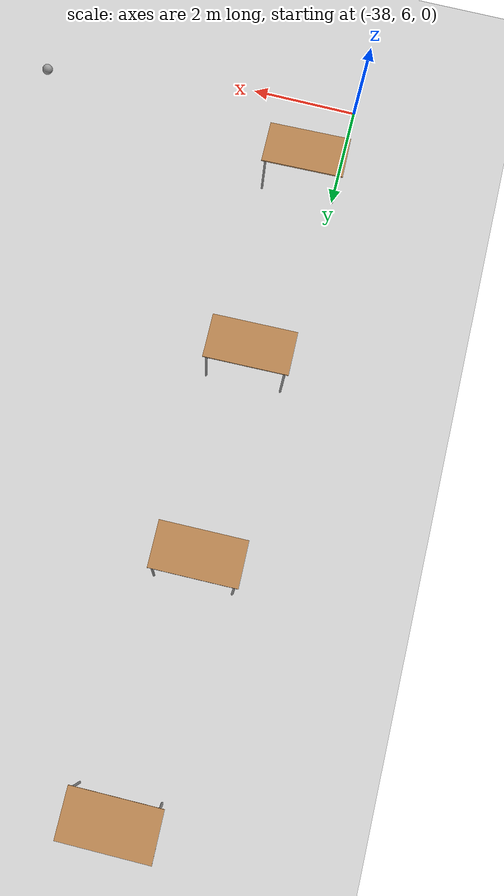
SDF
<sdf version="1.6">
 <world name="default">
  <model name="ground_plane">
   <static>1</static>
   <link name="link">
    <collision name="collision">
     <geometry><plane><normal>0 0 1</normal><size>100 100</size></plane></geometry>
     <surface><friction><ode><mu>100</mu><mu2>50</mu2></ode></friction></surface>
    </collision>
    <visual name="visual">
     <cast_shadows>0</cast_shadows>
     <geometry><plane><normal>0 0 1</normal><size>100 100</size></plane></geometry>
     <material>
      <script><uri>file://media/materials/scripts/gazebo.material</uri><name>Gazebo/Grey</name></script>
     </material>
    </visual>
   </link>
  </model>
  <model name="table_clone_5">
   <static>1</static>
   <link name="link">
    <collision name="surface">
     <pose>0 0 1 0 -0 0</pose>
     <geometry><box><size>1.5 0.8 0.03</size></box></geometry>
     <surface><friction><ode><mu>0.6</mu><mu2>0.6</mu2></ode></friction></surface>
    </collision>
    <visual name="visual1">
     <pose>0 0 1 0 -0 0</pose>
     <geometry><box><size>1.5 0.8 0.03</size></box></geometry>
     <material>
      <script><uri>file://media/materials/scripts/gazebo.material</uri><name>Gazebo/Wood</name></script>
     </material>
    </visual>
    <collision name="front_left_leg">
     <pose>0.68 0.38 0.5 0 -0 0</pose>
     <geometry><cylinder><radius>0.02</radius><length>1</length></cylinder></geometry>
    </collision>
    <visual name="front_left_leg">
     <pose>0.68 0.38 0.5 0 -0 0</pose>
     <geometry><cylinder><radius>0.02</radius><length>1</length></cylinder></geometry>
     <material>
      <script><uri>file://media/materials/scripts/gazebo.material</uri><name>Gazebo/Grey</name></script>
     </material>
    </visual>
    <collision name="front_right_leg">
     <pose>0.68 -0.38 0.5 0 -0 0</pose>
     <geometry><cylinder><radius>0.02</radius><length>1</length></cylinder></geometry>
    </collision>
    <visual name="front_right_leg">
     <pose>0.68 -0.38 0.5 0 -0 0</pose>
     <geometry><cylinder><radius>0.02</radius><length>1</length></cylinder></geometry>
     <material>
      <script><uri>file://media/materials/scripts/gazebo.material</uri><name>Gazebo/Grey</name></script>
     </material>
    </visual>
    <collision name="back_right_leg">
     <pose>-0.68 -0.38 0.5 0 -0 0</pose>
     <geometry><cylinder><radius>0.02</radius><length>1</length></cylinder></geometry>
    </collision>
    <visual name="back_right_leg">
     <pose>-0.68 -0.38 0.5 0 -0 0</pose>
     <geometry><cylinder><radius>0.02</radius><length>1</length></cylinder></geometry>
     <material>
      <script><uri>file://media/materials/scripts/gazebo.material</uri><name>Gazebo/Grey</name></script>
     </material>
    </visual>
    <collision name="back_left_leg">
     <pose>-0.68 0.38 0.5 0 -0 0</pose>
     <geometry><cylinder><radius>0.02</radius><length>1</length></cylinder></geometry>
    </collision>
    <visual name="back_left_leg">
     <pose>-0.68 0.38 0.5 0 -0 0</pose>
     <geometry><cylinder><radius>0.02</radius><length>1</length></cylinder></geometry>
     <material>
      <script><uri>file://media/materials/scripts/gazebo.material</uri><name>Gazebo/Grey</name></script>
     </material>
    </visual>
   </link>
   <pose>-37.3164 7.64133 0 0 0 -3.114</pose>
  </model>
  <model name="table_clone_5_clone">
   <static>1</static>
   <link name="link">
    <collision name="surface">
     <pose>0 0 1 0 -0 0</pose>
     <geometry><box><size>1.5 0.8 0.03</size></box></geometry>
     <surface><friction><ode><mu>0.6</mu><mu2>0.6</mu2></ode></friction></surface>
    </collision>
    <visual name="visual1">
     <pose>0 0 1 0 -0 0</pose>
     <geometry><box><size>1.5 0.8 0.03</size></box></geometry>
     <material>
      <script><uri>file://media/materials/scripts/gazebo.material</uri><name>Gazebo/Wood</name></script>
     </material>
    </visual>
    <collision name="front_left_leg">
     <pose>0.68 0.38 0.5 0 -0 0</pose>
     <geometry><cylinder><radius>0.02</radius><length>1</length></cylinder></geometry>
    </collision>
    <visual name="front_left_leg">
     <pose>0.68 0.38 0.5 0 -0 0</pose>
     <geometry><cylinder><radius>0.02</radius><length>1</length></cylinder></geometry>
     <material>
      <script><uri>file://media/materials/scripts/gazebo.material</uri><name>Gazebo/Grey</name></script>
     </material>
    </visual>
    <collision name="front_right_leg">
     <pose>0.68 -0.38 0.5 0 -0 0</pose>
     <geometry><cylinder><radius>0.02</radius><length>1</length></cylinder></geometry>
    </collision>
    <visual name="front_right_leg">
     <pose>0.68 -0.38 0.5 0 -0 0</pose>
     <geometry><cylinder><radius>0.02</radius><length>1</length></cylinder></geometry>
     <material>
      <script><uri>file://media/materials/scripts/gazebo.material</uri><name>Gazebo/Grey</name></script>
     </material>
    </visual>
    <collision name="back_right_leg">
     <pose>-0.68 -0.38 0.5 0 -0 0</pose>
     <geometry><cylinder><radius>0.02</radius><length>1</length></cylinder></geometry>
    </collision>
    <visual name="back_right_leg">
     <pose>-0.68 -0.38 0.5 0 -0 0</pose>
     <geometry><cylinder><radius>0.02</radius><length>1</length></cylinder></geometry>
     <material>
      <script><uri>file://media/materials/scripts/gazebo.material</uri><name>Gazebo/Grey</name></script>
     </material>
    </visual>
    <collision name="back_left_leg">
     <pose>-0.68 0.38 0.5 0 -0 0</pose>
     <geometry><cylinder><radius>0.02</radius><length>1</length></cylinder></geometry>
    </collision>
    <visual name="back_left_leg">
     <pose>-0.68 0.38 0.5 0 -0 0</pose>
     <geometry><cylinder><radius>0.02</radius><length>1</length></cylinder></geometry>
     <material>
      <script><uri>file://media/materials/scripts/gazebo.material</uri><name>Gazebo/Grey</name></script>
     </material>
    </visual>
   </link>
   <pose>-37.2503 11.5651 0 0 0 -3.114</pose>
  </model>
  <model name="table_clone_5_clone_0">
   <static>1</static>
   <link name="link">
    <collision name="surface">
     <pose>0 0 1 0 -0 0</pose>
     <geometry><box><size>1.5 0.8 0.03</size></box></geometry>
     <surface><friction><ode><mu>0.6</mu><mu2>0.6</mu2></ode></friction></surface>
    </collision>
    <visual name="visual1">
     <pose>0 0 1 0 -0 0</pose>
     <geometry><box><size>1.5 0.8 0.03</size></box></geometry>
     <material>
      <script><uri>file://media/materials/scripts/gazebo.material</uri><name>Gazebo/Wood</name></script>
     </material>
    </visual>
    <collision name="front_left_leg">
     <pose>0.68 0.38 0.5 0 -0 0</pose>
     <geometry><cylinder><radius>0.02</radius><length>1</length></cylinder></geometry>
    </collision>
    <visual name="front_left_leg">
     <pose>0.68 0.38 0.5 0 -0 0</pose>
     <geometry><cylinder><radius>0.02</radius><length>1</length></cylinder></geometry>
     <material>
      <script><uri>file://media/materials/scripts/gazebo.material</uri><name>Gazebo/Grey</name></script>
     </material>
    </visual>
    <collision name="front_right_leg">
     <pose>0.68 -0.38 0.5 0 -0 0</pose>
     <geometry><cylinder><radius>0.02</radius><length>1</length></cylinder></geometry>
    </collision>
    <visual name="front_right_leg">
     <pose>0.68 -0.38 0.5 0 -0 0</pose>
     <geometry><cylinder><radius>0.02</radius><length>1</length></cylinder></geometry>
     <material>
      <script><uri>file://media/materials/scripts/gazebo.material</uri><name>Gazebo/Grey</name></script>
     </material>
    </visual>
    <collision name="back_right_leg">
     <pose>-0.68 -0.38 0.5 0 -0 0</pose>
     <geometry><cylinder><radius>0.02</radius><length>1</length></cylinder></geometry>
    </collision>
    <visual name="back_right_leg">
     <pose>-0.68 -0.38 0.5 0 -0 0</pose>
     <geometry><cylinder><radius>0.02</radius><length>1</length></cylinder></geometry>
     <material>
      <script><uri>file://media/materials/scripts/gazebo.material</uri><name>Gazebo/Grey</name></script>
     </material>
    </visual>
    <collision name="back_left_leg">
     <pose>-0.68 0.38 0.5 0 -0 0</pose>
     <geometry><cylinder><radius>0.02</radius><length>1</length></cylinder></geometry>
    </collision>
    <visual name="back_left_leg">
     <pose>-0.68 0.38 0.5 0 -0 0</pose>
     <geometry><cylinder><radius>0.02</radius><length>1</length></cylinder></geometry>
     <material>
      <script><uri>file://media/materials/scripts/gazebo.material</uri><name>Gazebo/Grey</name></script>
     </material>
    </visual>
   </link>
   <pose>-37.3141 15.2602 0 0 0 -3.114</pose>
  </model>
  <model name="table_clone_5_clone_1">
   <static>1</static>
   <link name="link">
    <collision name="surface">
     <pose>0 0 1 0 -0 0</pose>
     <geometry><box><size>1.5 0.8 0.03</size></box></geometry>
     <surface><friction><ode><mu>0.6</mu><mu2>0.6</mu2></ode></friction></surface>
    </collision>
    <visual name="visual1">
     <pose>0 0 1 0 -0 0</pose>
     <geometry><box><size>1.5 0.8 0.03</size></box></geometry>
     <material>
      <script><uri>file://media/materials/scripts/gazebo.material</uri><name>Gazebo/Wood</name></script>
     </material>
    </visual>
    <collision name="front_left_leg">
     <pose>0.68 0.38 0.5 0 -0 0</pose>
     <geometry><cylinder><radius>0.02</radius><length>1</length></cylinder></geometry>
    </collision>
    <visual name="front_left_leg">
     <pose>0.68 0.38 0.5 0 -0 0</pose>
     <geometry><cylinder><radius>0.02</radius><length>1</length></cylinder></geometry>
     <material>
      <script><uri>file://media/materials/scripts/gazebo.material</uri><name>Gazebo/Grey</name></script>
     </material>
    </visual>
    <collision name="front_right_leg">
     <pose>0.68 -0.38 0.5 0 -0 0</pose>
     <geometry><cylinder><radius>0.02</radius><length>1</length></cylinder></geometry>
    </collision>
    <visual name="front_right_leg">
     <pose>0.68 -0.38 0.5 0 -0 0</pose>
     <geometry><cylinder><radius>0.02</radius><length>1</length></cylinder></geometry>
     <material>
      <script><uri>file://media/materials/scripts/gazebo.material</uri><name>Gazebo/Grey</name></script>
     </material>
    </visual>
    <collision name="back_right_leg">
     <pose>-0.68 -0.38 0.5 0 -0 0</pose>
     <geometry><cylinder><radius>0.02</radius><length>1</length></cylinder></geometry>
    </collision>
    <visual name="back_right_leg">
     <pose>-0.68 -0.38 0.5 0 -0 0</pose>
     <geometry><cylinder><radius>0.02</radius><length>1</length></cylinder></geometry>
     <material>
      <script><uri>file://media/materials/scripts/gazebo.material</uri><name>Gazebo/Grey</name></script>
     </material>
    </visual>
    <collision name="back_left_leg">
     <pose>-0.68 0.38 0.5 0 -0 0</pose>
     <geometry><cylinder><radius>0.02</radius><length>1</length></cylinder></geometry>
    </collision>
    <visual name="back_left_leg">
     <pose>-0.68 0.38 0.5 0 -0 0</pose>
     <geometry><cylinder><radius>0.02</radius><length>1</length></cylinder></geometry>
     <material>
      <script><uri>file://media/materials/scripts/gazebo.material</uri><name>Gazebo/Grey</name></script>
     </material>
    </visual>
   </link>
   <pose>-37.0758 19.5027 0 0 0 -3.114</pose>
  </model>
  <model name="my_ball">
   <link name="link_0">
    <inertial>
     <mass>1</mass>
     <inertia><ixx>0.1</ixx><ixy>0</ixy><ixz>0</ixz><iyy>0.1</iyy><iyz>0</iyz><izz>0.1</izz></inertia>
    </inertial>
    <visual name="visual">
     <geometry><sphere><radius>0.1</radius></sphere></geometry>
     <material>
      <lighting>1</lighting>
      <script><uri>file://media/materials/scripts/gazebo.material</uri><name>Gazebo/Grey</name></script>
      <shader type="pixel"><normal_map>__default__</normal_map></shader>
      <ambient>0.3 0.3 0.3 1</ambient>
      <diffuse>1 1 1 1</diffuse>
      <specular>1 1 1 1</specular>
      <emissive>1 1 1 1</emissive>
     </material>
    </visual>
    <collision name="collision">
     <geometry><sphere><radius>0.1</radius></sphere></geometry>
     <surface>
      <friction>
       <ode><mu>1</mu><mu2>1</mu2><fdir1>0 0 0</fdir1><slip1>0</slip1><slip2>0</slip2></ode>
       <torsional>
        <coefficient>1</coefficient>
        <patch_radius>0</patch_radius>
        <surface_radius>0</surface_radius>
        <use_patch_radius>1</use_patch_radius>
        <ode><slip>0</slip></ode>
       </torsional>
      </friction>
      <bounce><restitution_coefficient>0</restitution_coefficient><threshold>1e+06</threshold></bounce>
      <contact>
       <collide_without_contact>0</collide_without_contact>
       <collide_without_contact_bitmask>1</collide_without_contact_bitmask>
       <collide_bitmask>1</collide_bitmask>
       <ode>
        <soft_cfm>0</soft_cfm>
        <soft_erp>0.2</soft_erp>
        <kp>1e+13</kp>
        <kd>1</kd>
        <max_vel>0.01</max_vel>
        <min_depth>0</min_depth>
       </ode>
       <bullet>
        <split_impulse>1</split_impulse>
        <split_impulse_penetration_threshold>-0.01</split_impulse_penetration_threshold>
        <soft_cfm>0</soft_cfm>
        <soft_erp>0.2</soft_erp>
        <kp>1e+13</kp>
        <kd>1</kd>
       </bullet>
      </contact>
     </surface>
    </collision>
   </link>
   <static>0</static>
   <pose>-31.9362 6.6385 0.1 0 -0 0</pose>
  </model>
 </world>
</sdf>
